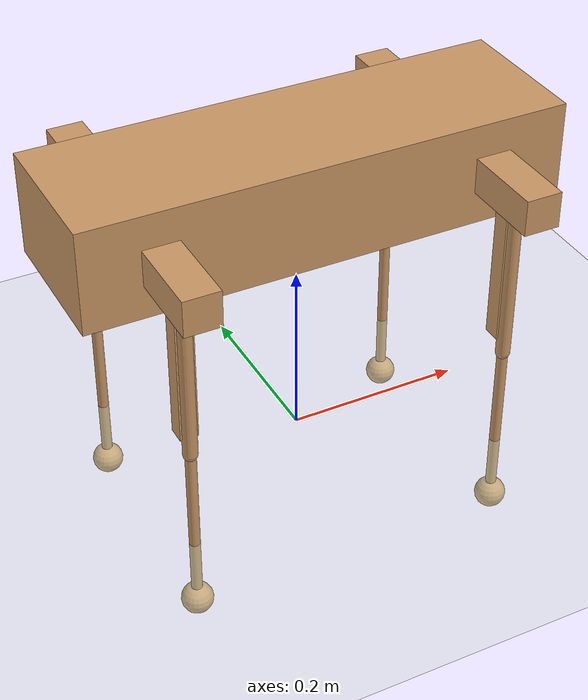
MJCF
<?xml version="1.0" ?>
<mujoco model="Eleven_Prototype">
  <compiler angle="radian" meshdir="assets" texturedir="assets"/>
  <option integrator="RK4" timestep="0.002" solver="Newton"/>

  <size nuser_geom="1" nuser_site="1" nuser_tendon="1" nuser_actuator="16" nuser_sensor="1" memory="10M"/>

  <default>
    <geom conaffinity="0" contype="1" density="5.0" friction="1 0.5 0.5" margin="0.01" material="matgeom"/>
    <joint armature="0" damping="0.5" limited="true"/>
    <site size="0.001 0.001 0.001" type="sphere" group="3"/>
    <motor ctrlrange="-1 1" ctrllimited="true"/>
    <default class="go1">
      <geom friction="0.7"/>
    </default>
  </default>

  <asset>
    <texture builtin="gradient" height="100" rgb1="1 1 1" rgb2="0 0 0" type="skybox" width="100"/>
    <texture builtin="flat" height="1278" mark="cross" markrgb="1 1 1" name="texgeom" random="0.01" rgb1="0.8 0.6 0.4" rgb2="0.8 0.6 0.4" type="cube" width="127"/>
    <texture builtin="checker" height="100" name="texplane" rgb1="0 0 0" rgb2="0.8 0.8 0.8" type="2d" width="100"/>
    <material name="MatPlane" reflectance="0.5" shininess="1" specular="1" texrepeat="30 30" texture="texplane"/>
    <material name="matgeom" texture="texgeom" texuniform="true"/>
  </asset>

  <worldbody>
    <geom conaffinity="1" condim="3" material="MatPlane" name="floor" pos="0 0 0" rgba="0.8 0.9 0.8 1" size="40 40 40" type="plane"/>
    <light cutoff="100" diffuse="1 1 1" dir="-0 0 -1.3" directional="true" exponent="1" pos="0 0 1.3" specular=".1 .1 .1"/>

    <body name="base" pos="0 0 0.32">
      <camera name="track" mode="trackcom" pos="0 -3 1" xyaxes="1 0 0 0 0.342 0.940"/>
      <inertial pos="0.008465 0.004045 -0.000763" quat="0.99267 0.003239 -0.120927 0.007254" mass="4.713" diaginertia="0.017938 0.057632 0.064713"/>
      <geom size="0.267 0.081 0.057" type="box" name="base_geom" class="go1"/>

      <!-- IMU sensor site -->
      <site name="imu" pos="0 0 0"/>

      <!-- Front Right leg -->
      <body name="FR_hip" pos="0.183 -0.047 0">
        <inertial pos="-0.003311 -0.085317 -0.003435" quat="0.518651 0.492757 0.516976 0.469468" mass="0.696" diaginertia="0.000469 0.004367 0.004423"/>
        <joint name="FR_hip_joint" pos="0 0 0" axis="1 0 0" range="-0.802851 0.802851"/>
        <geom size="0.02 0.046 0.02" pos="0 -0.08 0" type="box" class="go1"/>

        <body name="FR_thigh" pos="0 -0.08 0">
          <inertial pos="-0.003237 0.022327 -0.027326" quat="0.999125 -0.003617 -0.041755 0.000718" mass="1.013" diaginertia="0.005529 0.005139 0.003270"/>
          <joint name="FR_thigh_joint" pos="0 0 0" axis="0 1 0" range="-1.0472 4.18879"/>
          <geom size="0.008 0.08" fromto="0 0 0 0 0 -0.2" type="capsule" class="go1"/>
          <geom size="0.01 0.01 0.08" pos="0 0.01 -0.1" type="box" class="go1"/>

          <body name="FR_calf" pos="0 0 -0.2">
            <inertial pos="0.006435 0.000491 -0.131975" quat="0.999125 0.003617 0.041755 -0.000718" mass="0.166" diaginertia="0.002997 0.002956 0.000284"/>
            <joint name="FR_calf_joint" pos="0 0 0" axis="0 1 0" range="-2.69653 -0.916298"/>
            <geom size="0.006 0.13" fromto="0 0 0 0 0 -0.2" type="capsule" class="go1"/>

            <body name="FR_foot" pos="0 0 -0.2">
              <inertial pos="0 0 0" quat="0.5 0.5 0.5 0.5" mass="0.06" diaginertia="0.000001 0.000001 0.000001"/>
              <geom name="FR_foot" pos="0 0 0" size="0.0175" type="sphere" class="go1"/>
              <site name="FR_foot_contact" pos="0 0 0"/>
            </body>
          </body>
        </body>
      </body>

      <!-- Front Left leg -->
      <body name="FL_hip" pos="0.183 0.047 0">
        <inertial pos="-0.003311 0.085317 -0.003435" quat="0.469468 0.516976 0.492757 0.518651" mass="0.696" diaginertia="0.000469 0.004367 0.004423"/>
        <joint name="FL_hip_joint" pos="0 0 0" axis="1 0 0" range="-0.802851 0.802851"/>
        <geom size="0.02 0.046 0.02" pos="0 0.08 0" type="box" class="go1"/>

        <body name="FL_thigh" pos="0 0.08 0">
          <inertial pos="-0.003237 -0.022327 -0.027326" quat="0.999125 0.003617 0.041755 -0.000718" mass="1.013" diaginertia="0.005529 0.005139 0.003270"/>
          <joint name="FL_thigh_joint" pos="0 0 0" axis="0 1 0" range="-1.0472 4.18879"/>
          <geom size="0.008 0.08" fromto="0 0 0 0 0 -0.2" type="capsule" class="go1"/>
          <geom size="0.01 0.01 0.08" pos="0 -0.01 -0.1" type="box" class="go1"/>

          <body name="FL_calf" pos="0 0 -0.2">
            <inertial pos="0.006435 -0.000491 -0.131975" quat="0.999125 -0.003617 -0.041755 0.000718" mass="0.166" diaginertia="0.002997 0.002956 0.000284"/>
            <joint name="FL_calf_joint" pos="0 0 0" axis="0 1 0" range="-2.69653 -0.916298"/>
            <geom size="0.006 0.13" fromto="0 0 0 0 0 -0.2" type="capsule" class="go1"/>

            <body name="FL_foot" pos="0 0 -0.2">
              <inertial pos="0 0 0" quat="0.5 0.5 0.5 0.5" mass="0.06" diaginertia="0.000001 0.000001 0.000001"/>
              <geom name="FL_foot" pos="0 0 0" size="0.0175" type="sphere" class="go1"/>
              <site name="FL_foot_contact" pos="0 0 0"/>
            </body>
          </body>
        </body>
      </body>

      <!-- Rear Right leg -->
      <body name="RR_hip" pos="-0.183 -0.047 0">
        <inertial pos="0.003311 -0.085317 -0.003435" quat="0.518651 0.469468 0.516976 0.492757" mass="0.696" diaginertia="0.000469 0.004367 0.004423"/>
        <joint name="RR_hip_joint" pos="0 0 0" axis="1 0 0" range="-0.802851 0.802851"/>
        <geom size="0.02 0.046 0.02" pos="0 -0.08 0" type="box" class="go1"/>

        <body name="RR_thigh" pos="0 -0.08 0">
          <inertial pos="0.003237 0.022327 -0.027326" quat="0.999125 0.003617 0.041755 -0.000718" mass="1.013" diaginertia="0.005529 0.005139 0.003270"/>
          <joint name="RR_thigh_joint" pos="0 0 0" axis="0 1 0" range="-1.0472 4.18879"/>
          <geom size="0.008 0.08" fromto="0 0 0 0 0 -0.2" type="capsule" class="go1"/>
          <geom size="0.01 0.01 0.08" pos="0 0.01 -0.1" type="box" class="go1"/>

          <body name="RR_calf" pos="0 0 -0.2">
            <inertial pos="-0.006435 0.000491 -0.131975" quat="0.999125 -0.003617 -0.041755 0.000718" mass="0.166" diaginertia="0.002997 0.002956 0.000284"/>
            <joint name="RR_calf_joint" pos="0 0 0" axis="0 1 0" range="-2.69653 -0.916298"/>
            <geom size="0.006 0.13" fromto="0 0 0 0 0 -0.2" type="capsule" class="go1"/>

            <body name="RR_foot" pos="0 0 -0.2">
              <inertial pos="0 0 0" quat="0.5 0.5 0.5 0.5" mass="0.06" diaginertia="0.000001 0.000001 0.000001"/>
              <geom name="RR_foot" pos="0 0 0" size="0.0175" type="sphere" class="go1"/>
              <site name="RR_foot_contact" pos="0 0 0"/>
            </body>
          </body>
        </body>
      </body>

      <!-- Rear Left leg -->
      <body name="RL_hip" pos="-0.183 0.047 0">
        <inertial pos="0.003311 0.085317 -0.003435" quat="0.469468 0.492757 0.518651 0.516976" mass="0.696" diaginertia="0.000469 0.004367 0.004423"/>
        <joint name="RL_hip_joint" pos="0 0 0" axis="1 0 0" range="-0.802851 0.802851"/>
        <geom size="0.02 0.046 0.02" pos="0 0.08 0" type="box" class="go1"/>

        <body name="RL_thigh" pos="0 0.08 0">
          <inertial pos="0.003237 -0.022327 -0.027326" quat="0.999125 -0.003617 -0.041755 0.000718" mass="1.013" diaginertia="0.005529 0.005139 0.003270"/>
          <joint name="RL_thigh_joint" pos="0 0 0" axis="0 1 0" range="-1.0472 4.18879"/>
          <geom size="0.008 0.08" fromto="0 0 0 0 0 -0.2" type="capsule" class="go1"/>
          <geom size="0.01 0.01 0.08" pos="0 -0.01 -0.1" type="box" class="go1"/>

          <body name="RL_calf" pos="0 0 -0.2">
            <inertial pos="-0.006435 -0.000491 -0.131975" quat="0.999125 0.003617 0.041755 0.000718" mass="0.166" diaginertia="0.002997 0.002956 0.000284"/>
            <joint name="RL_calf_joint" pos="0 0 0" axis="0 1 0" range="-2.69653 -0.916298"/>
            <geom size="0.006 0.13" fromto="0 0 0 0 0 -0.2" type="capsule" class="go1"/>

            <body name="RL_foot" pos="0 0 -0.2">
              <inertial pos="0 0 0" quat="0.5 0.5 0.5 0.5" mass="0.06" diaginertia="0.000001 0.000001 0.000001"/>
              <geom name="RL_foot" pos="0 0 0" size="0.0175" type="sphere" class="go1"/>
              <site name="RL_foot_contact" pos="0 0 0"/>
            </body>
          </body>
        </body>
      </body>
    </body>
  </worldbody>

  <!-- ACTUATORS - Position actuators for all joints -->
  <actuator>
    <!-- Front Right leg -->
    <position name="FR_hip" joint="FR_hip_joint" ctrlrange="-0.802851 0.802851" kp="20"/>
    <position name="FR_thigh" joint="FR_thigh_joint" ctrlrange="-1.0472 4.18879" kp="20"/>
    <position name="FR_calf" joint="FR_calf_joint" ctrlrange="-2.69653 -0.916298" kp="20"/>

    <!-- Front Left leg -->
    <position name="FL_hip" joint="FL_hip_joint" ctrlrange="-0.802851 0.802851" kp="20"/>
    <position name="FL_thigh" joint="FL_thigh_joint" ctrlrange="-1.0472 4.18879" kp="20"/>
    <position name="FL_calf" joint="FL_calf_joint" ctrlrange="-2.69653 -0.916298" kp="20"/>

    <!-- Rear Right leg -->
    <position name="RR_hip" joint="RR_hip_joint" ctrlrange="-0.802851 0.802851" kp="20"/>
    <position name="RR_thigh" joint="RR_thigh_joint" ctrlrange="-1.0472 4.18879" kp="20"/>
    <position name="RR_calf" joint="RR_calf_joint" ctrlrange="-2.69653 -0.916298" kp="20"/>

    <!-- Rear Left leg -->
    <position name="RL_hip" joint="RL_hip_joint" ctrlrange="-0.802851 0.802851" kp="20"/>
    <position name="RL_thigh" joint="RL_thigh_joint" ctrlrange="-1.0472 4.18879" kp="20"/>
    <position name="RL_calf" joint="RL_calf_joint" ctrlrange="-2.69653 -0.916298" kp="20"/>
  </actuator>

  <!-- SENSORS - ONLY the ones you requested -->
  <sensor>
    <!-- IMU sensors (accelerometer + gyroscope) -->
    <accelerometer name="base_accelerometer" site="imu"/>
    <gyro name="base_gyroscope" site="imu"/>

    <!-- Joint position sensors (jointpos) -->
    <jointpos name="FR_hip_pos" joint="FR_hip_joint"/>
    <jointpos name="FR_thigh_pos" joint="FR_thigh_joint"/>
    <jointpos name="FR_calf_pos" joint="FR_calf_joint"/>
    <jointpos name="FL_hip_pos" joint="FL_hip_joint"/>
    <jointpos name="FL_thigh_pos" joint="FL_thigh_joint"/>
    <jointpos name="FL_calf_pos" joint="FL_calf_joint"/>
    <jointpos name="RR_hip_pos" joint="RR_hip_joint"/>
    <jointpos name="RR_thigh_pos" joint="RR_thigh_joint"/>
    <jointpos name="RR_calf_pos" joint="RR_calf_joint"/>
    <jointpos name="RL_hip_pos" joint="RL_hip_joint"/>
    <jointpos name="RL_thigh_pos" joint="RL_thigh_joint"/>
    <jointpos name="RL_calf_pos" joint="RL_calf_joint"/>

    <!-- Joint velocity sensors (jointvel) -->
    <jointvel name="FR_hip_vel" joint="FR_hip_joint"/>
    <jointvel name="FR_thigh_vel" joint="FR_thigh_joint"/>
    <jointvel name="FR_calf_vel" joint="FR_calf_joint"/>
    <jointvel name="FL_hip_vel" joint="FL_hip_joint"/>
    <jointvel name="FL_thigh_vel" joint="FL_thigh_joint"/>
    <jointvel name="FL_calf_vel" joint="FL_calf_joint"/>
    <jointvel name="RR_hip_vel" joint="RR_hip_joint"/>
    <jointvel name="RR_thigh_vel" joint="RR_thigh_joint"/>
    <jointvel name="RR_calf_vel" joint="RR_calf_joint"/>
    <jointvel name="RL_hip_vel" joint="RL_hip_joint"/>
    <jointvel name="RL_thigh_vel" joint="RL_thigh_joint"/>
    <jointvel name="RL_calf_vel" joint="RL_calf_joint"/>

    <!-- Foot force and torque sensors -->
    <force name="FR_foot_force" site="FR_foot_contact"/>
    <torque name="FR_foot_torque" site="FR_foot_contact"/>
    <force name="FL_foot_force" site="FL_foot_contact"/>
    <torque name="FL_foot_torque" site="FL_foot_contact"/>
    <force name="RR_foot_force" site="RR_foot_contact"/>
    <torque name="RR_foot_torque" site="RR_foot_contact"/>
    <force name="RL_foot_force" site="RL_foot_contact"/>
    <torque name="RL_foot_torque" site="RL_foot_contact"/>
  </sensor>
</mujoco>
